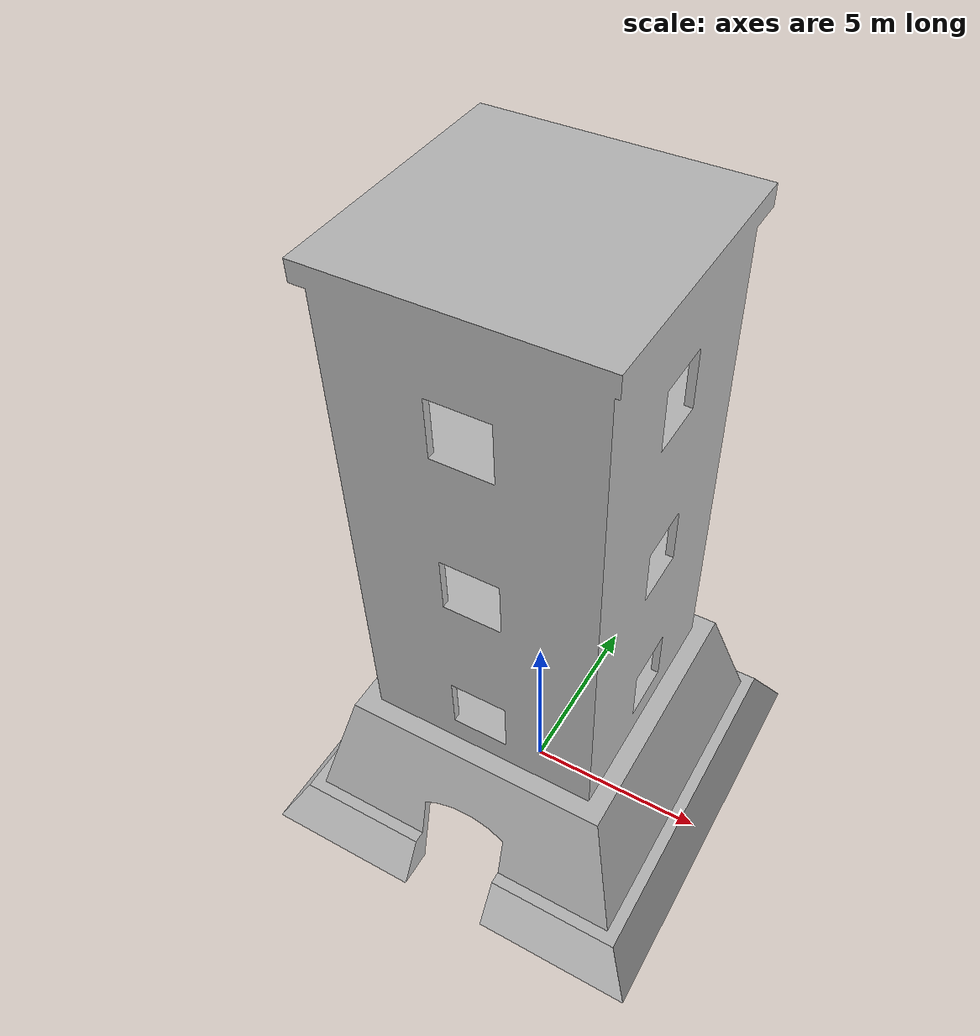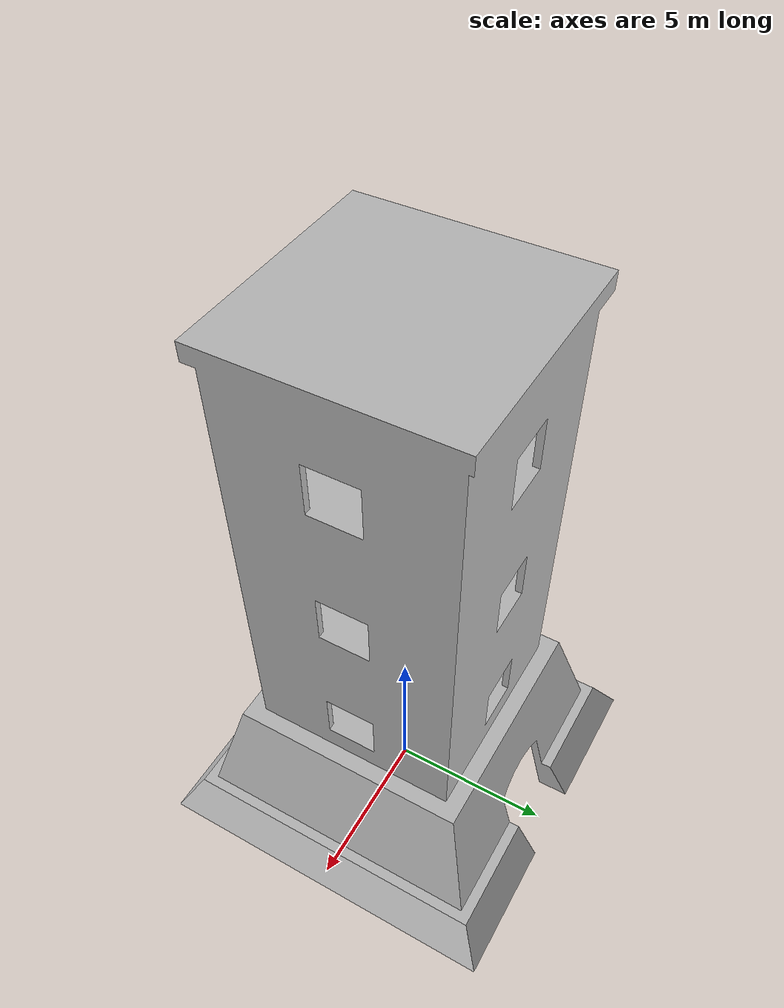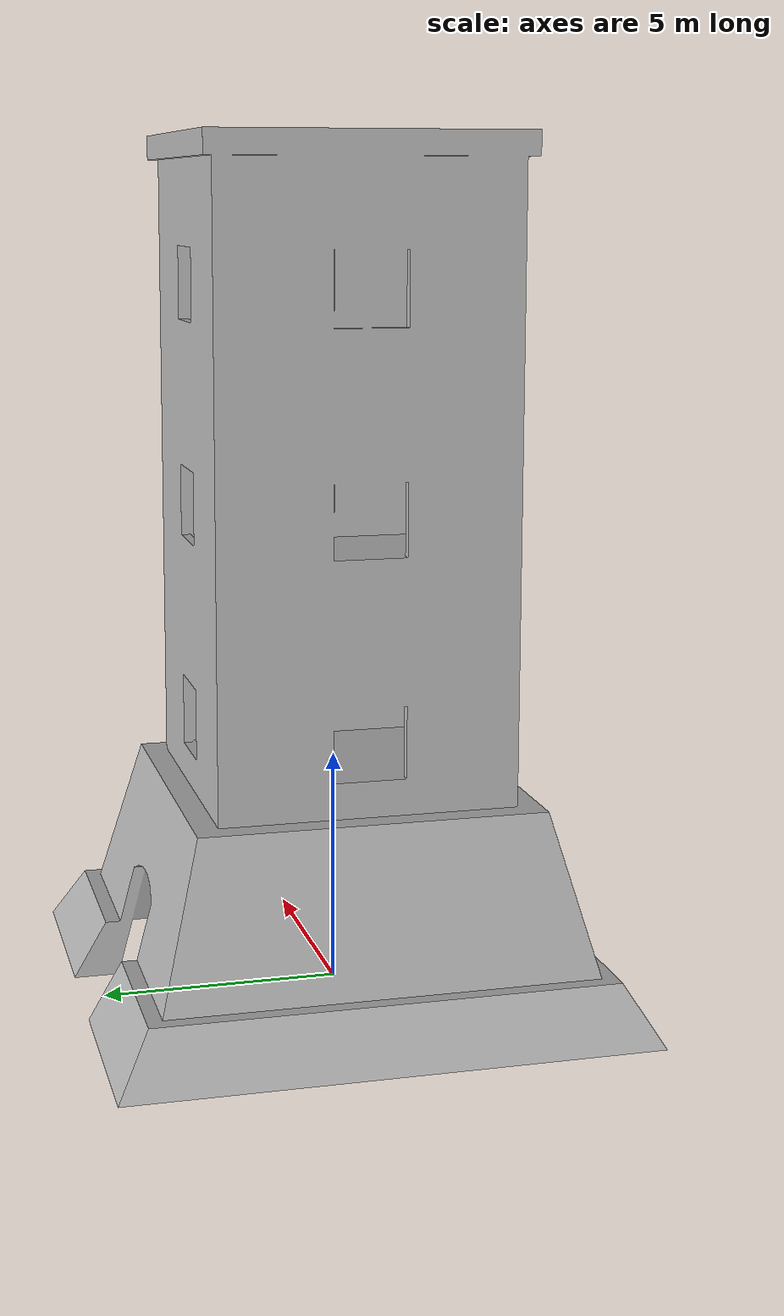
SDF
<?xml version="1.0" ?>
<sdf version="1.5">
  <model name="tower">
    <static>true</static>

   <link name="link">
      <collision name="collision">
        <geometry>
          <mesh>
            <uri>model://tower/mesh/tower_1.dae</uri>
          </mesh>
        </geometry>
      </collision>
      <visual name="visual">
        <geometry>
          <mesh>
            <uri>model://tower/mesh/tower_1.dae</uri>
          </mesh>
        </geometry>
      </visual>
    </link>
  </model>
</sdf>
